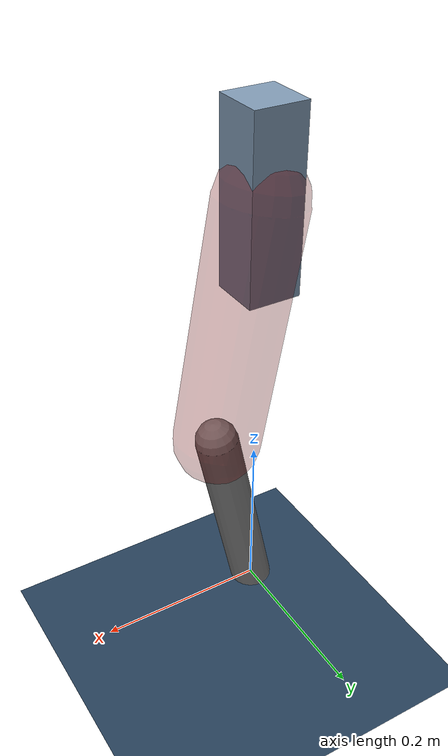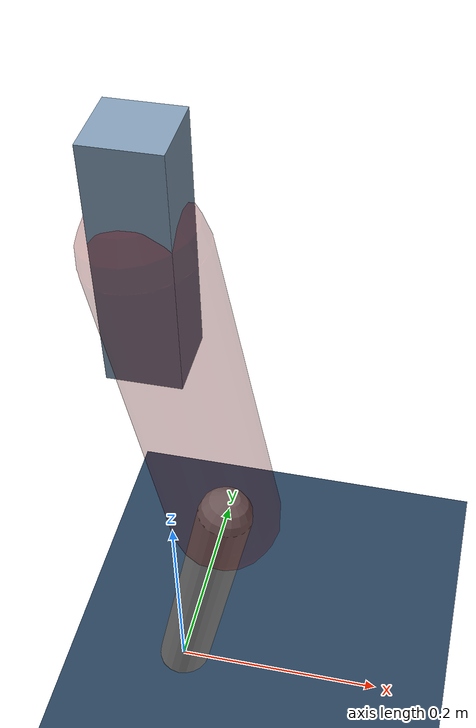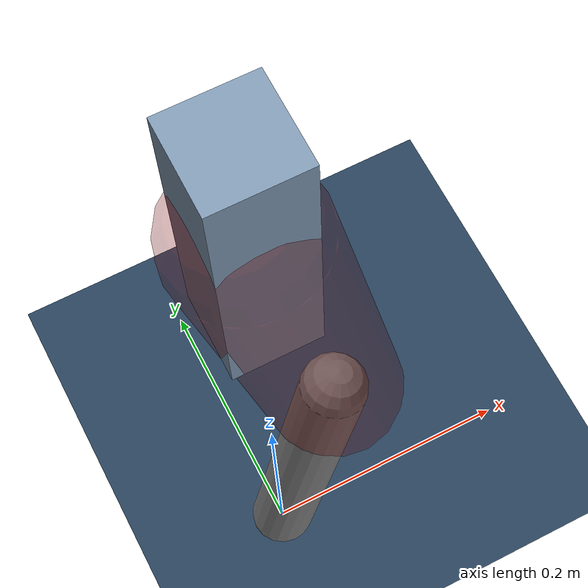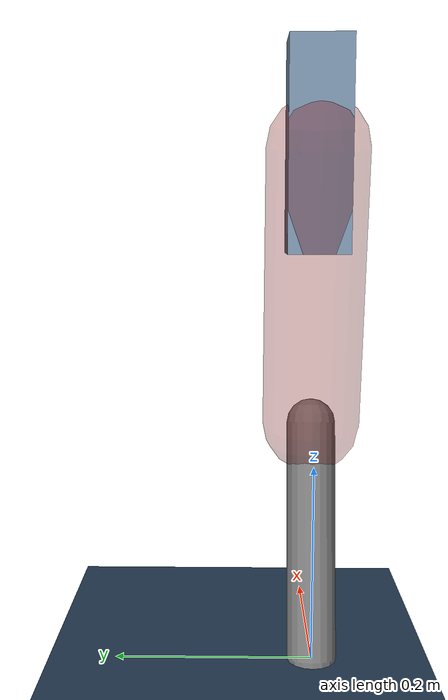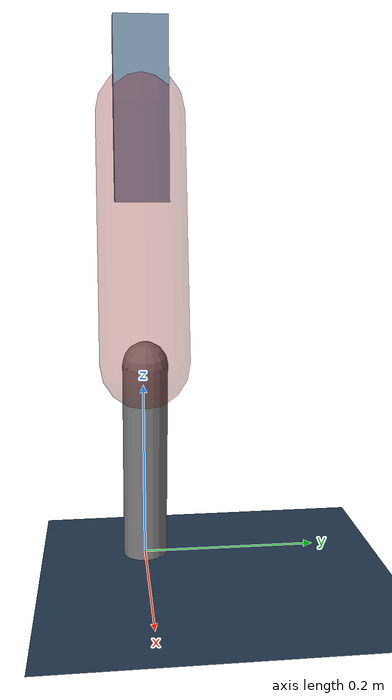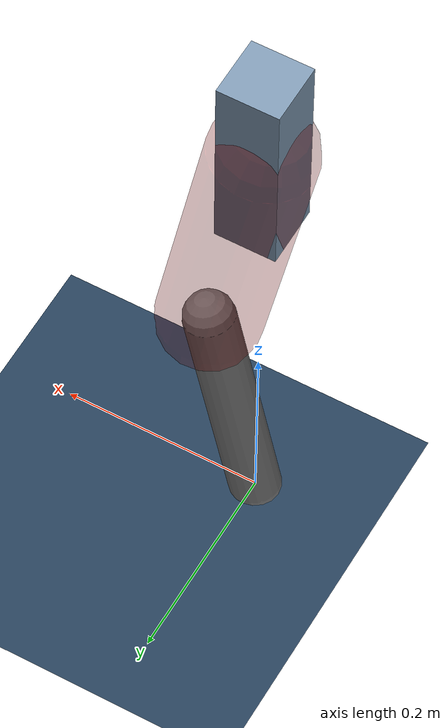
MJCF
<mujoco model="Hopper2D">
	<compiler inertiafromgeom="true" angle="radian" />
	<option timestep="0.001" integrator="implicit" cone="elliptic" solver="Newton" tolerance="1e-10" />

	<default>
		<geom contype="1" conaffinity="1" condim="3" friction="2 0.005 0.0001" solref="0.005 1" />
		<joint limited="true" damping="0.1" />
	</default>

	<asset>
		<texture name="skybox" type="skybox" builtin="gradient" rgb1=".4 .6 .8" rgb2="0 0 0" width="800" height="800" />
		<texture name="grid" type="2d" builtin="checker" rgb1=".1 .2 .3" rgb2=".2 .3 .4" width="300" height="300" mark="edge" markrgb=".2 .3 .4" />
		<material name="ground" texture="grid" texrepeat="1 1" texuniform="true" reflectance="0.1" />
		<material name="leg" rgba="0.5 0.6 0.7 1" />
	</asset>

	<worldbody>

		<geom name="floor" type="plane" size="5 5 0.25" material="ground" />

		<light directional="false" diffuse="0.8 0.8 0.8" specular="0.3 0.3 0.3" pos="0 0 2" dir="0 0 -1" />
		<light mode="targetbodycom" target="base" directional="false" diffuse="0.8 0.8 0.8" specular="0.3 0.3 0.3" pos="0 0 2" dir="0 0 -1" />

		<camera name="fixed" pos="0 -2 1" xyaxes="1 0 0 0 0 1" />
		<camera name="tracking" mode="trackcom" pos="0 -3 1" />

		<body name="root" pos="0 0 0.5120939898602874">
			<joint name="slide_x" type="slide" axis="1 0 0" range="-100 100" />
			<joint name="slide_z" type="slide" axis="0 0 1" range="0 10" />

			<body name="base" pos="0 0 0">
				<geom name="torso" type="box" size="0.03 0.03 0.1" mass="2.14" material="leg" />

				<body name="link1" pos="0 0 0" euler="0 1.3893636880460352 0">
					<joint type="hinge" axis="0 -1 0" pos="0 0 0" name="hinge1" limited="true" range="-3.14 3.14" stiffness="0" damping="0.1" />
					<geom name="thigh" type="capsule" fromto="0 0 0 0.28094675181761875 0 0" size="0.05" rgba="0.5 0 0 0.3" mass="0.9376562299075705" />

					<body name="link2" pos="0.28094675181761875 0 0" euler="0 0.39323154146653083 0">
						<joint type="hinge" axis="0 -1 0" pos="0 0 0" name="hinge2" limited="true" range="-3.14 3.14" stiffness="0" damping="0.1" />
						<geom name="shank" type="capsule" fromto="0 0 0 0.24114723804266863 0 0" size="0.025" mass="0.4352177904341349" />

					</body>
				</body>
			</body>
		</body>
	</worldbody>

	<actuator>
		<motor name="torque1" joint="hinge1" ctrlrange="-61.15795511654284 61.15795511654284" ctrllimited="true" gear="1" />
		<motor name="torque2" joint="hinge2" ctrlrange="-109.77951627367491 109.77951627367491" ctrllimited="true" gear="1" />
	</actuator>
</mujoco>
